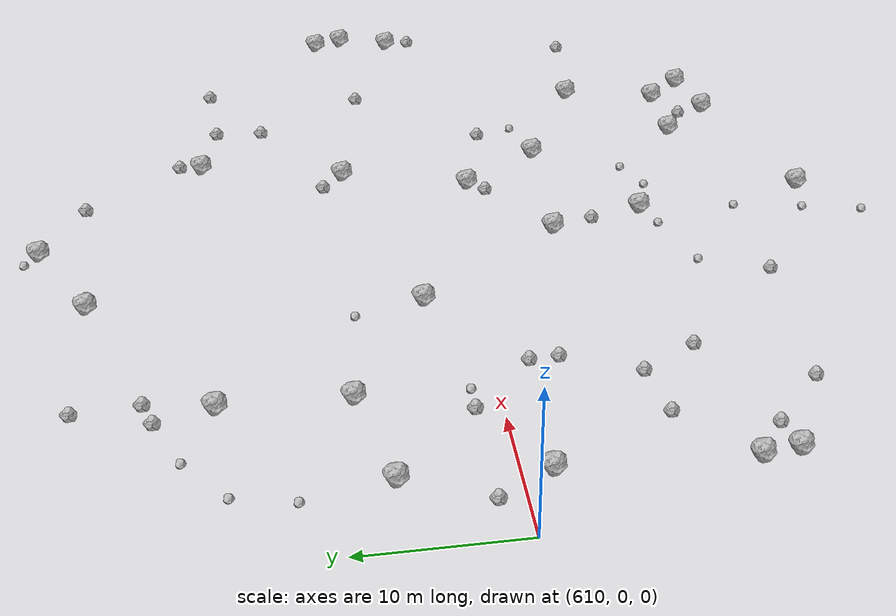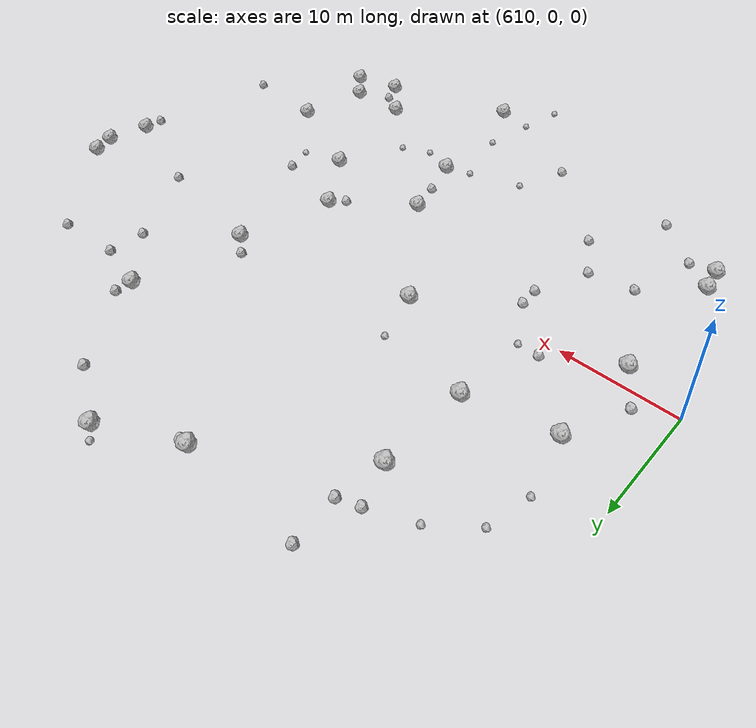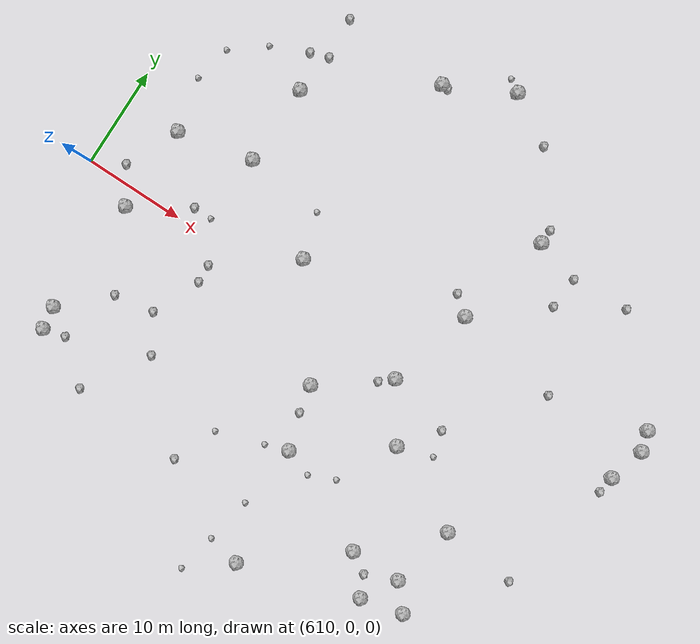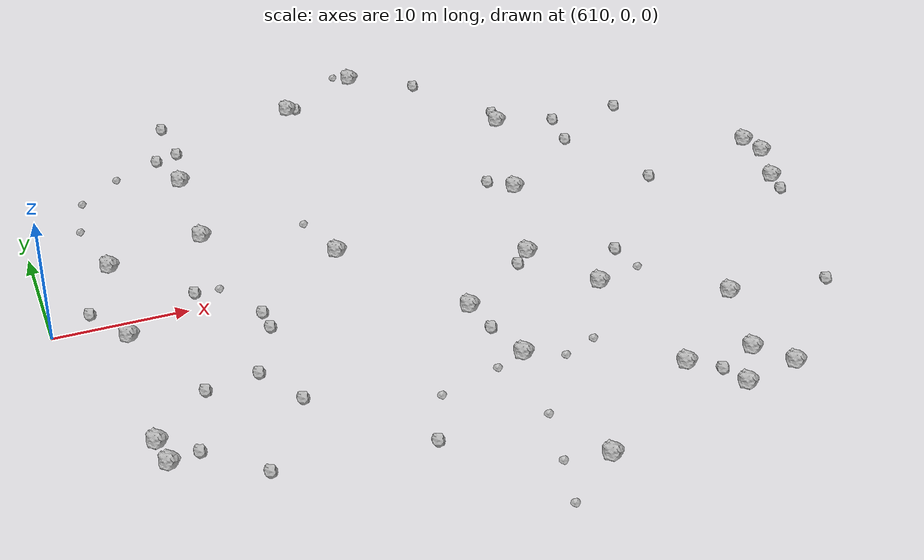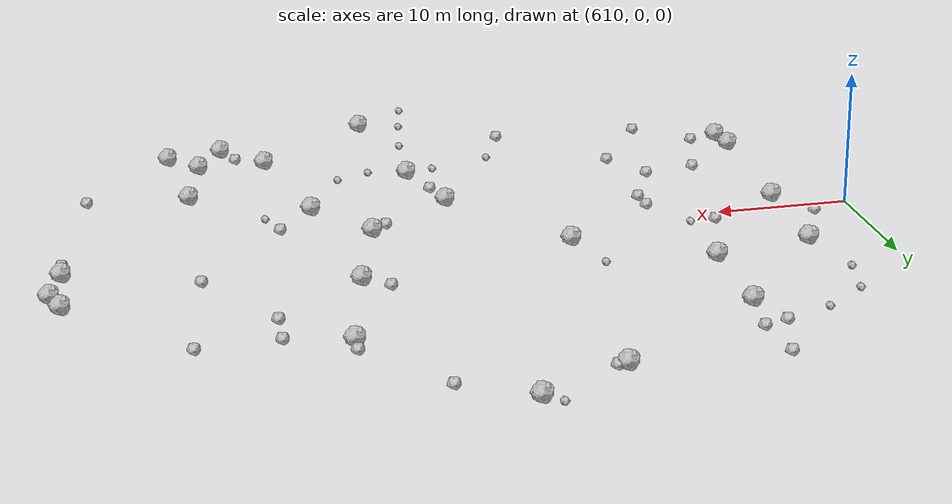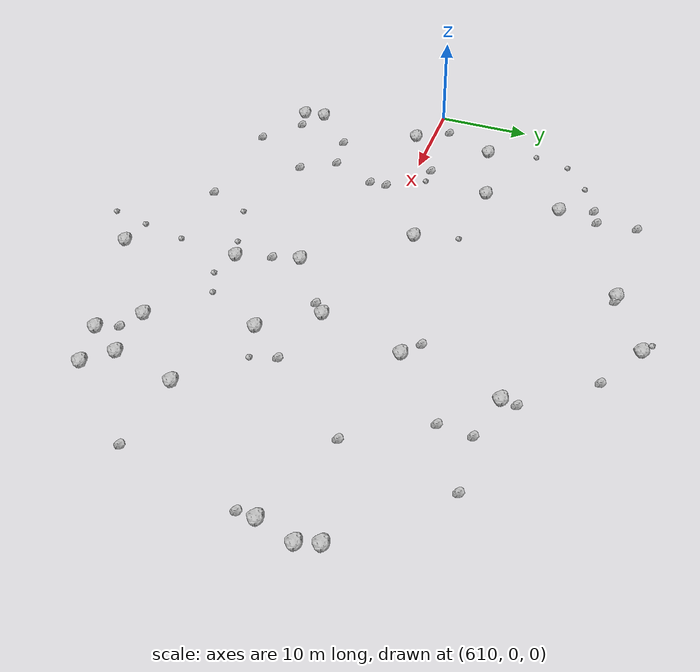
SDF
<sdf version="1.6">
 <world name="default">
  <include><uri>model://sun</uri></include>
  <model name="rock1_16_3">
   <include><uri>model://rock1</uri><pose>656.477489560566 -17.607748071757626 0.5 0 0 0</pose></include>
  </model>
  <model name="rock1_16_4">
   <include><uri>model://rock1</uri><pose>639.3360582957779 -6.529744989274256 0.5 0 0 0</pose></include>
  </model>
  <model name="rock1_16_5">
   <include><uri>model://rock1</uri><pose>648.2050401633905 6.972208774019762 0.5 0 0 0</pose></include>
  </model>
  <model name="rock1_16_6">
   <include><uri>model://rock1</uri><pose>668.7235107431839 7.302019512153613 0.5 0 0 0</pose></include>
  </model>
  <model name="rock1_16_7">
   <include><uri>model://rock1</uri><pose>669.3243013377203 5.305480776121129 0.5 0 0 0</pose></include>
  </model>
  <model name="rock1_16_8">
   <include><uri>model://rock1</uri><pose>623.0230216721098 8.515674223339978 0.5 0 0 0</pose></include>
  </model>
  <model name="rock1_16_9">
   <include><uri>model://rock1</uri><pose>657.978723073978 -11.185736004985618 0.5 0 0 0</pose></include>
  </model>
  <model name="rock1_16_10">
   <include><uri>model://rock1</uri><pose>645.8209999729256 -1.6285351598934419 0.5 0 0 0</pose></include>
  </model>
  <model name="rock1_16_11">
   <include><uri>model://rock1</uri><pose>632.2271504459845 3.202793816985462 0.5 0 0 0</pose></include>
  </model>
  <model name="rock1_16_12">
   <include><uri>model://rock1</uri><pose>650.4868008085725 16.832167038604297 0.5 0 0 0</pose></include>
  </model>
  <model name="rock1_16_13">
   <include><uri>model://rock1</uri><pose>634.3235454407773 24.349206742032344 0.5 0 0 0</pose></include>
  </model>
  <model name="rock1_16_14">
   <include><uri>model://rock1</uri><pose>641.0046063015855 -12.888068340184603 0.5 0 0 0</pose></include>
  </model>
  <model name="rock1_16_15">
   <include><uri>model://rock1</uri><pose>651.3667987779359 -17.603316602209368 0.5 0 0 0</pose></include>
  </model>
  <model name="rock1_16_16">
   <include><uri>model://rock1</uri><pose>614.9759085269845 -15.876738201131346 0.5 0 0 0</pose></include>
  </model>
  <model name="rock1_16_17">
   <include><uri>model://rock1</uri><pose>615.2570368714286 -1.81663295958505 0.5 0 0 0</pose></include>
  </model>
  <model name="rock1_16_18">
   <include><uri>model://rock1</uri><pose>654.3593581978276 -20.981060895704193 0.5 0 0 0</pose></include>
  </model>
  <model name="rock1_16_19">
   <include><uri>model://rock1</uri><pose>649.4388489577874 -6.944347378056008 0.5 0 0 0</pose></include>
  </model>
  <model name="rock1_16_20">
   <include><uri>model://rock1</uri><pose>668.2942543903514 1.6678561181837281 0.5 0 0 0</pose></include>
  </model>
  <model name="rock1_16_21">
   <include><uri>model://rock1</uri><pose>623.2221328463957 16.55078293977661 0.5 0 0 0</pose></include>
  </model>
  <model name="rock1_16_22">
   <include><uri>model://rock1</uri><pose>642.5885717443028 -24.58907673138517 0.5 0 0 0</pose></include>
  </model>
  <model name="rock1_16_23">
   <include><uri>model://rock1</uri><pose>614.6704978904324 -13.582189420969591 0.5 0 0 0</pose></include>
  </model>
  <model name="rock1_16_24">
   <include><uri>model://rock1</uri><pose>658.5824823966907 -20.03140525738474 0.5 0 0 0</pose></include>
  </model>
  <model name="rock1_16_25">
   <include><uri>model://rock1</uri><pose>640.8239545927954 27.631517088176345 0.5 0 0 0</pose></include>
  </model>
  <model name="rock1_16_26">
   <include><uri>model://rock1</uri><pose>615.576143164161 6.897749528992684 0.5 0 0 0</pose></include>
  </model>
  <model name="rock2_16_0">
   <include><uri>model://rock2</uri><pose>654.9939236344607 15.621444327878933 0.3 0 0 0</pose></include>
  </model>
  <model name="rock2_16_1">
   <include><uri>model://rock2</uri><pose>645.674511079384 24.73753094272808 0.3 0 0 0</pose></include>
  </model>
  <model name="rock2_16_2">
   <include><uri>model://rock2</uri><pose>644.5667783927123 -2.7211818416217923 0.3 0 0 0</pose></include>
  </model>
  <model name="rock2_16_3">
   <include><uri>model://rock2</uri><pose>653.4183278911587 -18.935656441763793 0.3 0 0 0</pose></include>
  </model>
  <model name="rock2_16_4">
   <include><uri>model://rock2</uri><pose>639.8786422557766 -9.31689006700687 0.3 0 0 0</pose></include>
  </model>
  <model name="rock2_16_5">
   <include><uri>model://rock2</uri><pose>658.9627970680326 5.003012421943801 0.3 0 0 0</pose></include>
  </model>
  <model name="rock2_16_6">
   <include><uri>model://rock2</uri><pose>622.880471182286 -8.814741630349555 0.3 0 0 0</pose></include>
  </model>
  <model name="rock2_16_7">
   <include><uri>model://rock2</uri><pose>632.2281838015898 -19.521159404555505 0.3 0 0 0</pose></include>
  </model>
  <model name="rock2_16_8">
   <include><uri>model://rock2</uri><pose>617.1148022220061 -15.386306271425932 0.3 0 0 0</pose></include>
  </model>
  <model name="rock2_16_9">
   <include><uri>model://rock2</uri><pose>665.4487851981678 -11.966564147688779 0.3 0 0 0</pose></include>
  </model>
  <model name="rock2_16_10">
   <include><uri>model://rock2</uri><pose>620.9772276711466 -18.78222026279193 0.3 0 0 0</pose></include>
  </model>
  <model name="rock2_16_11">
   <include><uri>model://rock2</uri><pose>654.7602662543542 12.382912045868224 0.3 0 0 0</pose></include>
  </model>
  <model name="rock2_16_12">
   <include><uri>model://rock2</uri><pose>623.826558271336 20.71400503268977 0.3 0 0 0</pose></include>
  </model>
  <model name="rock2_16_13">
   <include><uri>model://rock2</uri><pose>646.3775092215868 8.449444385142023 0.3 0 0 0</pose></include>
  </model>
  <model name="rock2_16_14">
   <include><uri>model://rock2</uri><pose>634.9660517614719 24.334621788229903 0.3 0 0 0</pose></include>
  </model>
  <model name="rock2_16_15">
   <include><uri>model://rock2</uri><pose>623.4994747841573 24.862112469193256 0.3 0 0 0</pose></include>
  </model>
  <model name="rock2_16_16">
   <include><uri>model://rock2</uri><pose>624.9923579237283 -4.064288193425355 0.3 0 0 0</pose></include>
  </model>
  <model name="rock2_16_17">
   <include><uri>model://rock2</uri><pose>650.5359999140869 18.337893760431612 0.3 0 0 0</pose></include>
  </model>
  <model name="rock2_16_18">
   <include><uri>model://rock2</uri><pose>660.7784748546028 15.965289054427373 0.3 0 0 0</pose></include>
  </model>
  <model name="rock2_16_19">
   <include><uri>model://rock2</uri><pose>668.0940209538273 -0.0681136993801168 0.3 0 0 0</pose></include>
  </model>
  <model name="rock2_16_20">
   <include><uri>model://rock2</uri><pose>622.0421148413865 20.112613463880308 0.3 0 0 0</pose></include>
  </model>
  <model name="rock2_16_21">
   <include><uri>model://rock2</uri><pose>613.0661568612951 1.6255584152047788 0.3 0 0 0</pose></include>
  </model>
  <model name="rock2_16_22">
   <include><uri>model://rock2</uri><pose>618.9308069204826 -9.460904539617484 0.3 0 0 0</pose></include>
  </model>
  <model name="rock2_16_23">
   <include><uri>model://rock2</uri><pose>620.8163733820338 1.6776810217367064 0.3 0 0 0</pose></include>
  </model>
  <model name="rock2_16_24">
   <include><uri>model://rock2</uri><pose>625.0032759128255 -12.413826213982983 0.3 0 0 0</pose></include>
  </model>
  <model name="rock2_16_25">
   <include><uri>model://rock2</uri><pose>624.9000659444869 -2.2319992938964432 0.3 0 0 0</pose></include>
  </model>
  <model name="rock2_16_26">
   <include><uri>model://rock2</uri><pose>652.2264041289254 -3.362536202406286 0.3 0 0 0</pose></include>
  </model>
  <model name="rock3_16_0">
   <include><uri>model://rock3</uri><pose>643.7566327749811 -13.943839893941139 0.2 0 0 0</pose></include>
  </model>
  <model name="rock3_16_1">
   <include><uri>model://rock3</uri><pose>634.0456316407125 -15.220597321125265 0.2 0 0 0</pose></include>
  </model>
  <model name="rock3_16_2">
   <include><uri>model://rock3</uri><pose>639.5559208758154 28.454842032950445 0.2 0 0 0</pose></include>
  </model>
  <model name="rock3_16_3">
   <include><uri>model://rock3</uri><pose>622.6680667018721 1.6065903698334232 0.2 0 0 0</pose></include>
  </model>
  <model name="rock3_16_4">
   <include><uri>model://rock3</uri><pose>640.1822648251225 -19.421568592490175 0.2 0 0 0</pose></include>
  </model>
  <model name="rock3_16_5">
   <include><uri>model://rock3</uri><pose>646.325372873318 -12.83845597125428 0.2 0 0 0</pose></include>
  </model>
  <model name="rock3_16_6">
   <include><uri>model://rock3</uri><pose>638.7125946351781 -13.71808843759905 0.2 0 0 0</pose></include>
  </model>
  <model name="rock3_16_7">
   <include><uri>model://rock3</uri><pose>630.8594891262735 7.649200061253751 0.2 0 0 0</pose></include>
  </model>
  <model name="rock3_16_8">
   <include><uri>model://rock3</uri><pose>639.3157137932692 -24.034947894585486 0.2 0 0 0</pose></include>
  </model>
  <model name="rock3_16_9">
   <include><uri>model://rock3</uri><pose>652.9234794984973 -5.9539580750616174 0.2 0 0 0</pose></include>
  </model>
  <model name="rock3_16_10">
   <include><uri>model://rock3</uri><pose>614.3398352519101 12.245832764737017 0.2 0 0 0</pose></include>
  </model>
  <model name="rock3_16_11">
   <include><uri>model://rock3</uri><pose>615.1807250757012 15.975913039370852 0.2 0 0 0</pose></include>
  </model>
  <model name="rock3_16_12">
   <include><uri>model://rock3</uri><pose>618.4160192172066 18.517848279158287 0.2 0 0 0</pose></include>
  </model>
  <model name="rock3_16_13">
   <include><uri>model://rock3</uri><pose>638.4596343621768 -27.980317404442097 0.2 0 0 0</pose></include>
  </model>
 </world>
</sdf>
